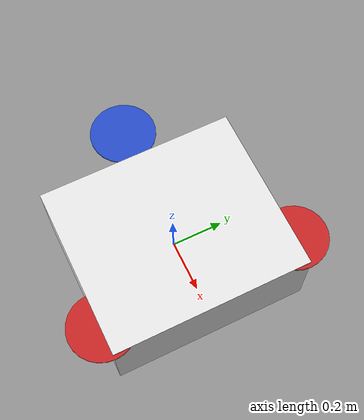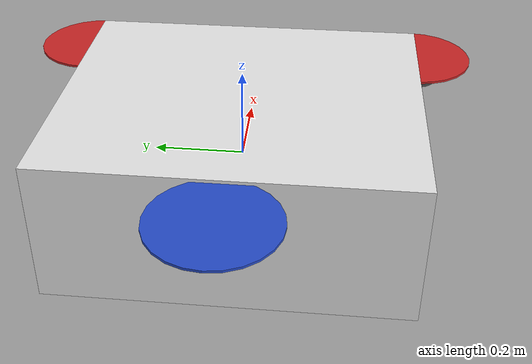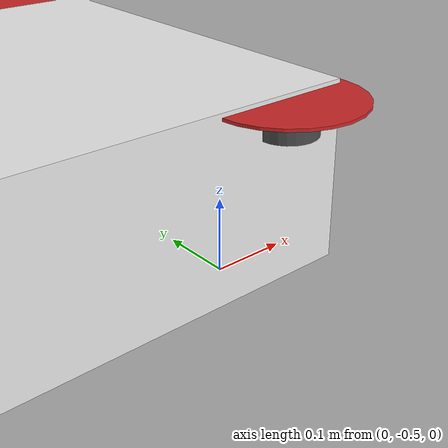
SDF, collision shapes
<sdf version='1.6'>
  <model name='tricopter'>
    <!-- Tricopter body -->
    <link name='base_link'>
      <pose>0 0 0 0 0 0</pose>
      <inertial>
        <pose>5e-05 -3.66e-03 -3.55e-03 0 0 0</pose> <!--CG-->
	<mass>4.92988</mass>
        <inertia>
          <ixx>3.688333e-02</ixx>
          <ixy>-3.504000e-06</ixy>
          <ixz>-4.894200e-06</ixz>
          <iyy>6.806140E-02</iyy>
          <iyz>-6.089860E-04</iyz>
          <izz>3.399470E-02</izz>
        </inertia>
      </inertial>
      <collision name='base_link_collision'>
	<pose>0 0 0 0 0 0</pose>
        <geometry>
          <box>
            <size>0.675 0.7794 0.315</size>
          </box>
        </geometry>
        <surface>
          <contact>
            <ode>
              <min_depth>0.001</min_depth>
              <max_vel>10</max_vel>
            </ode>
          </contact>
          <friction>
            <ode/>
          </friction>
        </surface>
      </collision>
      <visual name='arm0'>
        <pose>0.122 -0.1948 0.12 1.57 0 0.5235</pose>
        <geometry>
          <cylinder>
            <length>0.45</length>
            <radius>0.01</radius>
          </cylinder>
        </geometry>
        <material>
          <script>
            <name>Gazebo/White</name>
            <uri>__default__</uri>
          </script>
        </material>
      </visual>
      <visual name='arm1'>
        <pose>0.122 0.1948 0.12 1.57 0 -0.5235</pose>
        <geometry>
          <cylinder>
            <length>0.45</length>
            <radius>0.01</radius>
          </cylinder>
        </geometry>
        <material>
          <script>
            <name>Gazebo/White</name>
            <uri>__default__</uri>
          </script>
        </material>
      </visual>
      <visual name='arm2'>
        <pose>-0.22 0 0.12 1.57 0 1.57</pose>
        <geometry>
          <cylinder>
            <length>0.45</length>
            <radius>0.01</radius>
          </cylinder>
        </geometry>
        <material>
          <script>
            <name>Gazebo/White</name>
            <uri>__default__</uri>
          </script>
        </material>
      </visual>
    </link>
    <link name='imu_link'>
      <pose>0 0 0 0 0 0</pose>
      <inertial>
        <pose>0 0 0 0 0 0</pose>
        <mass>0.015</mass>
        <inertia>
          <ixx>1e-05</ixx>
          <ixy>0</ixy>
          <ixz>0</ixz>
          <iyy>1e-05</iyy>
          <iyz>0</iyz>
          <izz>1e-05</izz>
        </inertia>
      </inertial>
    </link>
    <joint name='imu_joint' type='revolute'>
      <child>imu_link</child>
      <parent>base_link</parent>
      <axis>
        <xyz>1 0 0</xyz>
        <limit>
          <lower>0</lower>
          <upper>0</upper>
          <effort>0</effort>
          <velocity>0</velocity>
        </limit>
        <dynamics>
          <spring_reference>0</spring_reference>
          <spring_stiffness>0</spring_stiffness>
        </dynamics>
        <use_parent_model_frame>1</use_parent_model_frame>
      </axis>
    </joint>
    <link name='motor_0'>
      <pose>0.225 -0.3897 0.12 0 0 0</pose>
      <inertial>
        <pose>0 0 0 0 0 0</pose>
        <mass>0.005</mass>
        <inertia>
          <ixx>0.000166704</ixx>
          <ixy>0</ixy>
          <ixz>0</ixz>
          <iyy>0.000166704</iyy>
          <iyz>0</iyz>
          <izz>0.000167604</izz>
        </inertia>
      </inertial>
      <collision name='motor_0_collision'>
        <pose>0 0 0 0 0 0</pose>
        <geometry>
          <cylinder>
            <length>0.05</length>
      	    <radius>0.05</radius>
          </cylinder>
        </geometry>
        <surface>
          <contact>
            <ode/>
          </contact>
          <friction>
            <ode/>
          </friction>
        </surface>
      </collision>
      <visual name='motor_0_visual'>
        <pose>0 0 0 0 0 0</pose>
        <geometry>
          <cylinder>
            <length>0.05</length>
            <radius>0.05</radius>
          </cylinder>
        </geometry>
        <material>
          <script>
            <name>Gazebo/DarkGrey</name>
            <uri>__default__</uri>
          </script>
        </material>
      </visual>
      <gravity>1</gravity>
      <velocity_decay/>
      <self_collide>0</self_collide>
    </link>
    <joint name='motor_0_joint' type='fixed'>
      <child>motor_0</child>
      <parent>base_link</parent>
    </joint>
    <link name='rotor_0'>
      <pose>0.225 -0.384 0.148 0 0 0</pose>
      <inertial>
        <pose>0 0 0 0 0 0</pose>
        <mass>0.005</mass>
        <inertia>
          <ixx>9.75e-07</ixx>
          <ixy>0</ixy>
          <ixz>0</ixz>
          <iyy>0.000273104</iyy>
          <iyz>0</iyz>
          <izz>0.000274004</izz>
        </inertia>
      </inertial>
      <collision name='rotor_0_collision'>
        <pose>0 0 0 0 0 0</pose>
        <geometry>
          <cylinder>
            <length>0.005</length>
            <radius>0.128</radius>
          </cylinder>
        </geometry>
        <surface>
          <contact>
            <ode/>
          </contact>
          <friction>
            <ode/>
          </friction>
        </surface>
      </collision>
      <visual name='rotor_0_visual'>
        <pose>0 0 0 0 0 0</pose>
        <geometry>
          <mesh>
	    <scale>2.8 2 1</scale>
            <uri>model://tricopter/meshes/prop_cw.dae</uri>
          </mesh>
        </geometry>
        <material>
          <script>
            <name>Gazebo/Red</name>
            <uri>file://media/materials/scripts/gazebo.material</uri>
          </script>
        </material>
      </visual>
      <gravity>1</gravity>
      <velocity_decay/>
      <self_collide>0</self_collide>
    </link>
    <joint name='rotor_0_joint' type='revolute'>
      <child>rotor_0</child>
      <parent>motor_0</parent>
      <axis>
        <xyz>0 0 1</xyz>
        <limit>
          <lower>-1e+16</lower>
          <upper>1e+16</upper>
        </limit>
        <dynamics>
          <spring_reference>0</spring_reference>
          <spring_stiffness>0</spring_stiffness>
        </dynamics>
        <use_parent_model_frame>1</use_parent_model_frame>
      </axis>
    </joint>
    <link name='motor_1'>
      <pose>0.225 0.3897 0.12 0 0 0</pose>
      <inertial>
        <pose>0 0 0 0 0 0</pose>
        <mass>0.005</mass>
        <inertia>
          <ixx>0.000166704</ixx>
          <ixy>0</ixy>
          <ixz>0</ixz>
          <iyy>0.000166704</iyy>
          <iyz>0</iyz>
          <izz>0.000167604</izz>
        </inertia>
      </inertial>
      <collision name='motor_1_collision'>
        <pose>0 0 0 0 0 0</pose>
        <geometry>
          <cylinder>
            <length>0.05</length>
      	    <radius>0.05</radius>
          </cylinder>
        </geometry>
        <surface>
          <contact>
            <ode/>
          </contact>
          <friction>
            <ode/>
          </friction>
        </surface>
      </collision>
      <visual name='motor_1_visual'>
        <pose>0 0 0 0 0 0</pose>
        <geometry>
          <cylinder>
            <length>0.05</length>
            <radius>0.05</radius>
          </cylinder>
        </geometry>
        <material>
          <script>
            <name>Gazebo/DarkGrey</name>
            <uri>__default__</uri>
          </script>
        </material>
      </visual>
      <gravity>1</gravity>
      <velocity_decay/>
      <self_collide>0</self_collide>
    </link>
    <joint name='motor_1_joint' type='fixed'>
      <child>motor_1</child>
      <parent>base_link</parent>
    </joint>
    <link name='rotor_1'>
      <pose>0.225 0.384 0.148 0 0 0</pose>
      <inertial>
        <pose>0 0 0 0 0 0</pose>
        <mass>0.005</mass>
        <inertia>
          <ixx>9.75e-07</ixx>
          <ixy>0</ixy>
          <ixz>0</ixz>
          <iyy>0.000273104</iyy>
          <iyz>0</iyz>
          <izz>0.000274004</izz>
        </inertia>
      </inertial>
      <collision name='rotor_1_collision'>
        <pose>0 0 0 0 0 0</pose>
        <geometry>
          <cylinder>
            <length>0.005</length>
            <radius>0.128</radius>
          </cylinder>
        </geometry>
        <surface>
          <contact>
            <ode/>
          </contact>
          <friction>
            <ode/>
          </friction>
        </surface>
      </collision>
      <visual name='rotor_1_visual'>
        <pose>0 0 0 0 0 0</pose>
        <geometry>
          <mesh>
	    <scale>2.8 2 1</scale>
            <uri>model://tricopter/meshes/prop_ccw.dae</uri>
          </mesh>
        </geometry>
        <material>
          <script>
            <name>Gazebo/Red</name>
            <uri>file://media/materials/scripts/gazebo.material</uri>
          </script>
        </material>
      </visual>
      <gravity>1</gravity>
      <velocity_decay/>
      <self_collide>0</self_collide>
    </link>
    <joint name='rotor_1_joint' type='revolute'>
      <child>rotor_1</child>
      <parent>motor_1</parent>
      <axis>
        <xyz>0 0 1</xyz>
        <limit>
          <lower>-1e+16</lower>
          <upper>1e+16</upper>
        </limit>
        <dynamics>
          <spring_reference>0</spring_reference>
          <spring_stiffness>0</spring_stiffness>
        </dynamics>
        <use_parent_model_frame>1</use_parent_model_frame>
      </axis>
    </joint>
    <link name='motor_2'>
      <pose>-0.45 0 0.12 0 0 0</pose>
      <inertial>
        <pose>0 0 0 0 0 0</pose>
        <mass>0.005</mass>
        <inertia>
          <ixx>0.000166704</ixx>
          <ixy>0</ixy>
          <ixz>0</ixz>
          <iyy>0.000166704</iyy>
          <iyz>0</iyz>
          <izz>0.000167604</izz>
        </inertia>
      </inertial>
      <collision name='motor_2_collision'>
        <pose>0 0 0 0 0 0</pose>
        <geometry>
          <cylinder>
            <length>0.05</length>
      	    <radius>0.05</radius>
          </cylinder>
        </geometry>
        <surface>
          <contact>
            <ode/>
          </contact>
          <friction>
            <ode/>
          </friction>
        </surface>
      </collision>
      <visual name='motor_2_visual'>
        <pose>0 0 0 0 0 0</pose>
        <geometry>
          <cylinder>
            <length>0.05</length>
            <radius>0.05</radius>
          </cylinder>
        </geometry>
        <material>
          <script>
            <name>Gazebo/DarkGrey</name>
            <uri>__default__</uri>
          </script>
        </material>
      </visual>
      <gravity>1</gravity>
      <velocity_decay/>
      <self_collide>0</self_collide>
    </link>
    <joint name='motor_2_joint' type='revolute'>
      <child>motor_2</child>
      <parent>base_link</parent>
      <axis>
        <xyz>1 0 0</xyz>
        <limit>
	  <lower>-0.2618</lower>  <!-- -15 degrees -->
          <upper>0.2618</upper>  <!-- +15 degrees -->
        </limit>
        <dynamics>
          <spring_reference>0</spring_reference>
          <spring_stiffness>0</spring_stiffness>
        </dynamics>
        <use_parent_model_frame>1</use_parent_model_frame>
      </axis>
    </joint>
    <link name='rotor_2'>
      <pose>-0.45 0 0.148 0 0 0</pose>
      <inertial>
        <pose>0 0 0 0 0 0</pose>
        <mass>0.005</mass>
        <inertia>
          <ixx>9.75e-07</ixx>
          <ixy>0</ixy>
          <ixz>0</ixz>
          <iyy>0.000273104</iyy>
          <iyz>0</iyz>
          <izz>0.000274004</izz>
        </inertia>
      </inertial>
      <collision name='rotor_2_collision'>
        <pose>0 0 0 0 0 0</pose>
        <geometry>
          <cylinder>
            <length>0.005</length>
            <radius>0.128</radius>
          </cylinder>
        </geometry>
        <surface>
          <contact>
            <ode/>
          </contact>
          <friction>
            <ode/>
          </friction>
        </surface>
      </collision>
      <visual name='rotor_2_visual'>
        <pose>0 0 0 0 0 0</pose>
        <geometry>
          <mesh>
            <scale>2.8 2 1</scale>
            <uri>model://tricopter/meshes/prop_ccw.dae</uri>
          </mesh>
        </geometry>
        <material>
          <script>
            <name>Gazebo/Blue</name>
            <uri>file://media/materials/scripts/gazebo.material</uri>
          </script>
        </material>
      </visual>
      <gravity>1</gravity>
      <velocity_decay/>
      <self_collide>0</self_collide>
    </link>
    <joint name='rotor_2_joint' type='revolute'>
      <child>rotor_2</child>
      <parent>motor_2</parent>
      <axis>
        <xyz>0 0 1</xyz>
        <limit>
          <lower>-1e+16</lower>
          <upper>1e+16</upper>
        </limit>
        <dynamics>
          <spring_reference>0</spring_reference>
          <spring_stiffness>0</spring_stiffness>
        </dynamics>
        <use_parent_model_frame>1</use_parent_model_frame>
      </axis>
    </joint>
    <plugin name='rosbag' filename='librotors_gazebo_multirotor_base_plugin.so'>
      <robotNamespace></robotNamespace>
      <linkName>base_link</linkName>
      <rotorVelocitySlowdownSim>10</rotorVelocitySlowdownSim>
    </plugin>
    <plugin name='front_right_motor_model' filename='librotors_gazebo_motor_model.so'>
      <robotNamespace></robotNamespace>
      <jointName>rotor_0_joint</jointName>
      <linkName>rotor_0</linkName>
      <turningDirection>ccw</turningDirection>
      <timeConstantUp>0.0125</timeConstantUp>
      <timeConstantDown>0.025</timeConstantDown>
      <maxRotVelocity>500</maxRotVelocity>
      <motorConstant>2e-4</motorConstant>
      <momentConstant>0.06</momentConstant>
      <commandSubTopic>/gazebo/command/motor_speed</commandSubTopic>
      <motorNumber>0</motorNumber>
      <rotorDragCoefficient>0.000806428</rotorDragCoefficient>
      <rollingMomentCoefficient>1e-06</rollingMomentCoefficient>
      <motorSpeedPubTopic>/motor_speed/0</motorSpeedPubTopic>
      <rotorVelocitySlowdownSim>10</rotorVelocitySlowdownSim>
    </plugin>
    <plugin name='front_left_motor_model' filename='librotors_gazebo_motor_model.so'>
      <robotNamespace></robotNamespace>
      <jointName>rotor_1_joint</jointName>
      <linkName>rotor_1</linkName>
      <turningDirection>cw</turningDirection>
      <timeConstantUp>0.0125</timeConstantUp>
      <timeConstantDown>0.025</timeConstantDown>
      <maxRotVelocity>500</maxRotVelocity>
      <motorConstant>2e-4</motorConstant>
      <momentConstant>0.06</momentConstant>
      <commandSubTopic>/gazebo/command/motor_speed</commandSubTopic>
      <motorNumber>1</motorNumber>
      <rotorDragCoefficient>0.000806428</rotorDragCoefficient>
      <rollingMomentCoefficient>1e-06</rollingMomentCoefficient>
      <motorSpeedPubTopic>/motor_speed/1</motorSpeedPubTopic>
      <rotorVelocitySlowdownSim>10</rotorVelocitySlowdownSim>
    </plugin>
    <plugin name='back_motor_model' filename='librotors_gazebo_motor_model.so'>
      <robotNamespace></robotNamespace>
      <jointName>rotor_2_joint</jointName>
      <linkName>rotor_2</linkName>
      <turningDirection>ccw</turningDirection>
      <timeConstantUp>0.0125</timeConstantUp>
      <timeConstantDown>0.025</timeConstantDown>
      <maxRotVelocity>500</maxRotVelocity>
      <motorConstant>2e-4</motorConstant>
      <momentConstant>0.06</momentConstant>
      <commandSubTopic>/gazebo/command/motor_speed</commandSubTopic>
      <motorNumber>2</motorNumber>
      <rotorDragCoefficient>0.000806428</rotorDragCoefficient>
      <rollingMomentCoefficient>1e-06</rollingMomentCoefficient>
      <motorSpeedPubTopic>/motor_speed/2</motorSpeedPubTopic>
      <rotorVelocitySlowdownSim>10</rotorVelocitySlowdownSim>
    </plugin>
    <plugin name="gps_plugin" filename="libgazebo_gps_plugin.so">
        <robotNamespace></robotNamespace>
        <gpsNoise>true</gpsNoise>
    </plugin>
    <plugin name='mavlink_interface' filename='librotors_gazebo_mavlink_interface.so'>
      <robotNamespace/>
      <imuSubTopic>/imu</imuSubTopic>
      <gpsSubTopic>/gps</gpsSubTopic>
      <mavlink_addr>INADDR_ANY</mavlink_addr>
      <mavlink_udp_port>14560</mavlink_udp_port>
      <motorSpeedCommandPubTopic>/gazebo/command/motor_speed</motorSpeedCommandPubTopic>
      <control_channels>
        <channel name='rotor_0'>
          <input_index>0</input_index>
          <input_offset>0</input_offset>
          <input_scaling>500</input_scaling>
          <zero_position_disarmed>0</zero_position_disarmed>
          <zero_position_armed>100</zero_position_armed>
          <joint_control_type>velocity</joint_control_type>
        </channel>
        <channel name='rotor_1'>
          <input_index>1</input_index>
          <input_offset>0</input_offset>
          <input_scaling>500</input_scaling>
          <zero_position_disarmed>0</zero_position_disarmed>
          <zero_position_armed>100</zero_position_armed>
          <joint_control_type>velocity</joint_control_type>
        </channel>
        <channel name='rotor_2'>
          <input_index>2</input_index>
          <input_offset>0</input_offset>
          <input_scaling>500</input_scaling>
          <zero_position_disarmed>0</zero_position_disarmed>
          <zero_position_armed>100</zero_position_armed>
          <joint_control_type>velocity</joint_control_type>
        </channel>
	<channel name="motor2_tilt">
	  <input_index>3</input_index>
	  <input_offset>0</input_offset>
	  <input_scaling>0.5235987756</input_scaling> <!-- -15 degrees to 15 degrees Y+ -->
  	  <zero_position_disarmed>-0.2617993878</zero_position_disarmed> <!-- -15 degrees -->
  	  <zero_position_armed>-0.0436</zero_position_armed> <!-- -2.5 degrees -->
	  <joint_control_type>position</joint_control_type>
	  <joint_name>motor_2_joint</joint_name>
	  <joint_control_pid>
	    <p>100</p>
	    <i>0</i>
	    <d>0</d>
	    <iMax>0.0</iMax>
	    <iMin>0.0</iMin>
	    <cmdMax>2</cmdMax>
	    <cmdMin>-2</cmdMin>
	  </joint_control_pid>
	</channel>
      </control_channels>
    </plugin>
    <plugin name='rotors_gazebo_imu_plugin' filename='librotors_gazebo_imu_plugin.so'>
      <robotNamespace></robotNamespace>
      <linkName>imu_link</linkName>
      <imuTopic>/imu</imuTopic>
      <gyroscopeNoiseDensity>0.0003394</gyroscopeNoiseDensity>
      <gyroscopeRandomWalk>3.8785e-05</gyroscopeRandomWalk>
      <gyroscopeBiasCorrelationTime>1000.0</gyroscopeBiasCorrelationTime>
      <gyroscopeTurnOnBiasSigma>0.0087</gyroscopeTurnOnBiasSigma>
      <accelerometerNoiseDensity>0.004</accelerometerNoiseDensity>
      <accelerometerRandomWalk>0.006</accelerometerRandomWalk>
      <accelerometerBiasCorrelationTime>300.0</accelerometerBiasCorrelationTime>
      <accelerometerTurnOnBiasSigma>0.196</accelerometerTurnOnBiasSigma>
    </plugin>
    <static>0</static>
  </model>
</sdf>
